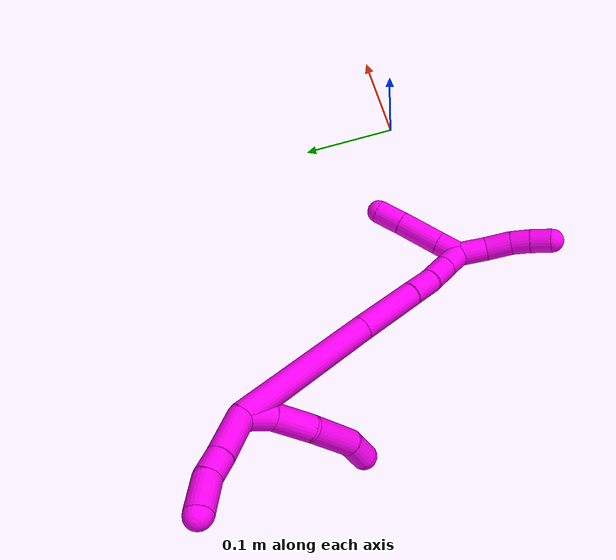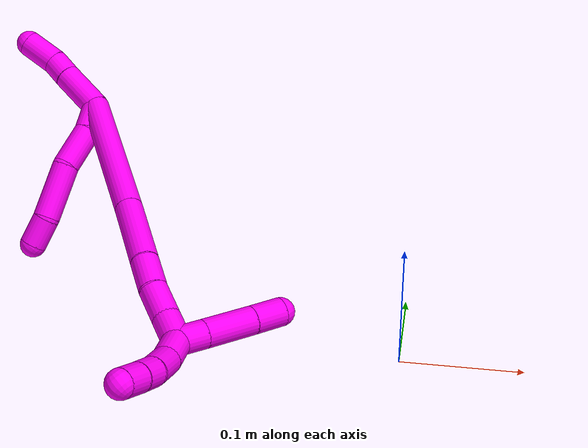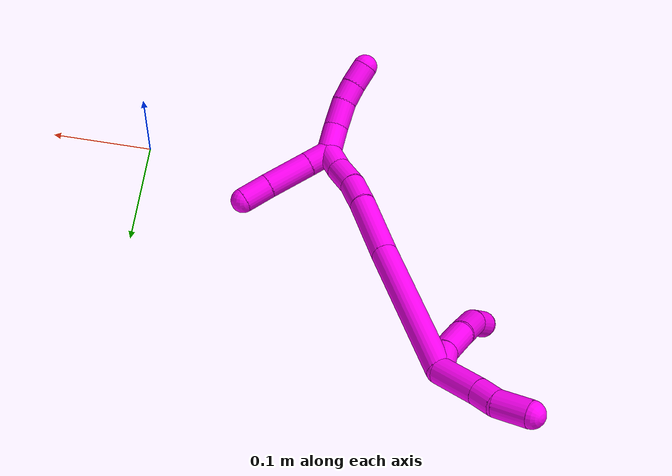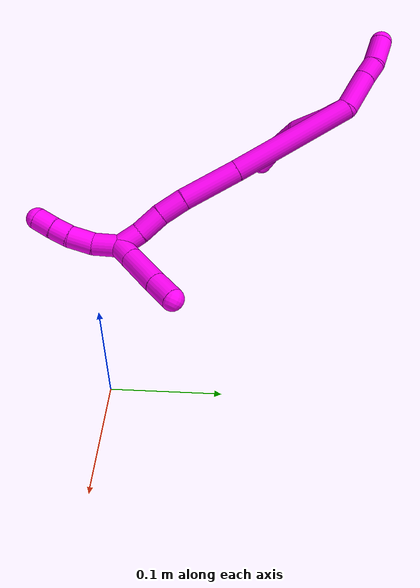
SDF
<sdf version="1.7">
 <world name="default">
  <model name="10">
   <static>0</static>
   <link name="10">
    <collision name="collision-cylinder-e_1_2_8">
     <pose>-0.00698 -0.009637 -0.008651 2.30238 -0.494334 -1.02952</pose>
     <geometry><cylinder><radius>0.0125</radius><length>0.029423</length></cylinder></geometry>
     <surface>
      <friction><ode><mu>1.16</mu><mu2>1.16</mu2><slip1>0</slip1><slip2>0</slip2></ode></friction>
      <contact><ode><kp>1e+06</kp><kd>1</kd><max_vel>0</max_vel><min_depth>0.001</min_depth></ode></contact>
     </surface>
    </collision>
    <visual name="visual-cylinder-e_1_2_8">
     <pose>-0.00698 -0.009637 -0.008651 2.30238 -0.494334 -1.02952</pose>
     <geometry><cylinder><radius>0.0125</radius><length>0.029423</length></cylinder></geometry>
     <material><ambient>1 0 0.964706 1</ambient></material>
    </visual>
    <collision name="collision-cylinder-e_2_8_9">
     <pose>-0.02703 -0.032416 -0.024986 2.09978 -0.709431 -1.14645</pose>
     <geometry><cylinder><radius>0.0125</radius><length>0.04013</length></cylinder></geometry>
     <surface>
      <friction><ode><mu>1.16</mu><mu2>1.16</mu2><slip1>0</slip1><slip2>0</slip2></ode></friction>
      <contact><ode><kp>1e+06</kp><kd>1</kd><max_vel>0</max_vel><min_depth>0.001</min_depth></ode></contact>
     </surface>
    </collision>
    <visual name="visual-cylinder-e_2_8_9">
     <pose>-0.02703 -0.032416 -0.024986 2.09978 -0.709431 -1.14645</pose>
     <geometry><cylinder><radius>0.0125</radius><length>0.04013</length></cylinder></geometry>
     <material><ambient>1 0 0.964706 1</ambient></material>
    </visual>
    <collision name="collision-cylinder-e_3_9_10">
     <pose>-0.059503 -0.056997 -0.046289 2.44309 -0.828834 -1.75856</pose>
     <geometry><cylinder><radius>0.0125</radius><length>0.052642</length></cylinder></geometry>
     <surface>
      <friction><ode><mu>1.16</mu><mu2>1.16</mu2><slip1>0</slip1><slip2>0</slip2></ode></friction>
      <contact><ode><kp>1e+06</kp><kd>1</kd><max_vel>0</max_vel><min_depth>0.001</min_depth></ode></contact>
     </surface>
    </collision>
    <visual name="visual-cylinder-e_3_9_10">
     <pose>-0.059503 -0.056997 -0.046289 2.44309 -0.828834 -1.75856</pose>
     <geometry><cylinder><radius>0.0125</radius><length>0.052642</length></cylinder></geometry>
     <material><ambient>1 0 0.964706 1</ambient></material>
    </visual>
    <collision name="collision-cylinder-e_4_10_6">
     <pose>-0.09135 -0.072298 -0.064756 2.46859 -1.10881 -2.1131</pose>
     <geometry><cylinder><radius>0.0125</radius><length>0.027805</length></cylinder></geometry>
     <surface>
      <friction><ode><mu>1.16</mu><mu2>1.16</mu2><slip1>0</slip1><slip2>0</slip2></ode></friction>
      <contact><ode><kp>1e+06</kp><kd>1</kd><max_vel>0</max_vel><min_depth>0.001</min_depth></ode></contact>
     </surface>
    </collision>
    <visual name="visual-cylinder-e_4_10_6">
     <pose>-0.09135 -0.072298 -0.064756 2.46859 -1.10881 -2.1131</pose>
     <geometry><cylinder><radius>0.0125</radius><length>0.027805</length></cylinder></geometry>
     <material><ambient>1 0 0.964706 1</ambient></material>
    </visual>
    <collision name="collision-cylinder-e_1_2_11">
     <pose>-0.002723 0.002247 0.022334 -0.100259 -0.12074 0.006065</pose>
     <geometry><cylinder><radius>0.0125</radius><length>0.045222</length></cylinder></geometry>
     <surface>
      <friction><ode><mu>1.16</mu><mu2>1.16</mu2><slip1>0</slip1><slip2>0</slip2></ode></friction>
      <contact><ode><kp>1e+06</kp><kd>1</kd><max_vel>0</max_vel><min_depth>0.001</min_depth></ode></contact>
     </surface>
    </collision>
    <visual name="visual-cylinder-e_1_2_11">
     <pose>-0.002723 0.002247 0.022334 -0.100259 -0.12074 0.006065</pose>
     <geometry><cylinder><radius>0.0125</radius><length>0.045222</length></cylinder></geometry>
     <material><ambient>1 0 0.964706 1</ambient></material>
    </visual>
    <collision name="collision-cylinder-e_2_11_12">
     <pose>-0.006636 0.006215 0.055186 -0.162242 -0.111093 0.009041</pose>
     <geometry><cylinder><radius>0.0125</radius><length>0.02145</length></cylinder></geometry>
     <surface>
      <friction><ode><mu>1.16</mu><mu2>1.16</mu2><slip1>0</slip1><slip2>0</slip2></ode></friction>
      <contact><ode><kp>1e+06</kp><kd>1</kd><max_vel>0</max_vel><min_depth>0.001</min_depth></ode></contact>
     </surface>
    </collision>
    <visual name="visual-cylinder-e_2_11_12">
     <pose>-0.006636 0.006215 0.055186 -0.162242 -0.111093 0.009041</pose>
     <geometry><cylinder><radius>0.0125</radius><length>0.02145</length></cylinder></geometry>
     <material><ambient>1 0 0.964706 1</ambient></material>
    </visual>
    <collision name="collision-cylinder-e_3_12_5">
     <pose>-0.011314 0.006391 0.081926 0.094994 -0.210938 -0.010064</pose>
     <geometry><cylinder><radius>0.0125</radius><length>0.033328</length></cylinder></geometry>
     <surface>
      <friction><ode><mu>1.16</mu><mu2>1.16</mu2><slip1>0</slip1><slip2>0</slip2></ode></friction>
      <contact><ode><kp>1e+06</kp><kd>1</kd><max_vel>0</max_vel><min_depth>0.001</min_depth></ode></contact>
     </surface>
    </collision>
    <visual name="visual-cylinder-e_3_12_5">
     <pose>-0.011314 0.006391 0.081926 0.094994 -0.210938 -0.010064</pose>
     <geometry><cylinder><radius>0.0125</radius><length>0.033328</length></cylinder></geometry>
     <material><ambient>1 0 0.964706 1</ambient></material>
    </visual>
    <collision name="collision-cylinder-e_1_2_13">
     <pose>0.003956 -0.041686 -0.059333 2.52914 0.054504 0.172004</pose>
     <geometry><cylinder><radius>0.0125</radius><length>0.145241</length></cylinder></geometry>
     <surface>
      <friction><ode><mu>1.16</mu><mu2>1.16</mu2><slip1>0</slip1><slip2>0</slip2></ode></friction>
      <contact><ode><kp>1e+06</kp><kd>1</kd><max_vel>0</max_vel><min_depth>0.001</min_depth></ode></contact>
     </surface>
    </collision>
    <visual name="visual-cylinder-e_1_2_13">
     <pose>0.003956 -0.041686 -0.059333 2.52914 0.054504 0.172004</pose>
     <geometry><cylinder><radius>0.0125</radius><length>0.145241</length></cylinder></geometry>
     <material><ambient>1 0 0.964706 1</ambient></material>
    </visual>
    <collision name="collision-cylinder-e_2_13_14">
     <pose>0.009731 -0.103391 -0.145839 2.50664 0.053838 0.163521</pose>
     <geometry><cylinder><radius>0.0125</radius><length>0.067603</length></cylinder></geometry>
     <surface>
      <friction><ode><mu>1.16</mu><mu2>1.16</mu2><slip1>0</slip1><slip2>0</slip2></ode></friction>
      <contact><ode><kp>1e+06</kp><kd>1</kd><max_vel>0</max_vel><min_depth>0.001</min_depth></ode></contact>
     </surface>
    </collision>
    <visual name="visual-cylinder-e_2_13_14">
     <pose>0.009731 -0.103391 -0.145839 2.50664 0.053838 0.163521</pose>
     <geometry><cylinder><radius>0.0125</radius><length>0.067603</length></cylinder></geometry>
     <material><ambient>1 0 0.964706 1</ambient></material>
    </visual>
    <collision name="collision-cylinder-e_3_14_15">
     <pose>0.011451 -0.131622 -0.185966 2.5766 -0.006472 -0.022296</pose>
     <geometry><cylinder><radius>0.0125</radius><length>0.030672</length></cylinder></geometry>
     <surface>
      <friction><ode><mu>1.16</mu><mu2>1.16</mu2><slip1>0</slip1><slip2>0</slip2></ode></friction>
      <contact><ode><kp>1e+06</kp><kd>1</kd><max_vel>0</max_vel><min_depth>0.001</min_depth></ode></contact>
     </surface>
    </collision>
    <visual name="visual-cylinder-e_3_14_15">
     <pose>0.011451 -0.131622 -0.185966 2.5766 -0.006472 -0.022296</pose>
     <geometry><cylinder><radius>0.0125</radius><length>0.030672</length></cylinder></geometry>
     <material><ambient>1 0 0.964706 1</ambient></material>
    </visual>
    <collision name="collision-cylinder-e_4_15_16">
     <pose>0.01136 -0.145814 -0.212848 2.73602 0.00058 0.002821</pose>
     <geometry><cylinder><radius>0.0125</radius><length>0.030319</length></cylinder></geometry>
     <surface>
      <friction><ode><mu>1.16</mu><mu2>1.16</mu2><slip1>0</slip1><slip2>0</slip2></ode></friction>
      <contact><ode><kp>1e+06</kp><kd>1</kd><max_vel>0</max_vel><min_depth>0.001</min_depth></ode></contact>
     </surface>
    </collision>
    <visual name="visual-cylinder-e_4_15_16">
     <pose>0.01136 -0.145814 -0.212848 2.73602 0.00058 0.002821</pose>
     <geometry><cylinder><radius>0.0125</radius><length>0.030319</length></cylinder></geometry>
     <material><ambient>1 0 0.964706 1</ambient></material>
    </visual>
    <collision name="collision-cylinder-e_5_16_1">
     <pose>0.01273 -0.158445 -0.237962 2.60517 0.10417 0.374919</pose>
     <geometry><cylinder><radius>0.0125</radius><length>0.026166</length></cylinder></geometry>
     <surface>
      <friction><ode><mu>1.16</mu><mu2>1.16</mu2><slip1>0</slip1><slip2>0</slip2></ode></friction>
      <contact><ode><kp>1e+06</kp><kd>1</kd><max_vel>0</max_vel><min_depth>0.001</min_depth></ode></contact>
     </surface>
    </collision>
    <visual name="visual-cylinder-e_5_16_1">
     <pose>0.01273 -0.158445 -0.237962 2.60517 0.10417 0.374919</pose>
     <geometry><cylinder><radius>0.0125</radius><length>0.026166</length></cylinder></geometry>
     <material><ambient>1 0 0.964706 1</ambient></material>
    </visual>
    <collision name="collision-cylinder-e_1_1_17">
     <pose>0.019339 -0.154562 -0.252953 -1.91757 0.438268 -0.614485</pose>
     <geometry><cylinder><radius>0.0125</radius><length>0.024738</length></cylinder></geometry>
     <surface>
      <friction><ode><mu>1.16</mu><mu2>1.16</mu2><slip1>0</slip1><slip2>0</slip2></ode></friction>
      <contact><ode><kp>1e+06</kp><kd>1</kd><max_vel>0</max_vel><min_depth>0.001</min_depth></ode></contact>
     </surface>
    </collision>
    <visual name="visual-cylinder-e_1_1_17">
     <pose>0.019339 -0.154562 -0.252953 -1.91757 0.438268 -0.614485</pose>
     <geometry><cylinder><radius>0.0125</radius><length>0.024738</length></cylinder></geometry>
     <material><ambient>1 0 0.964706 1</ambient></material>
    </visual>
    <collision name="collision-cylinder-e_2_17_18">
     <pose>0.034659 -0.124322 -0.263792 -1.91357 0.448608 -0.626021</pose>
     <geometry><cylinder><radius>0.0125</radius><length>0.046443</length></cylinder></geometry>
     <surface>
      <friction><ode><mu>1.16</mu><mu2>1.16</mu2><slip1>0</slip1><slip2>0</slip2></ode></friction>
      <contact><ode><kp>1e+06</kp><kd>1</kd><max_vel>0</max_vel><min_depth>0.001</min_depth></ode></contact>
     </surface>
    </collision>
    <visual name="visual-cylinder-e_2_17_18">
     <pose>0.034659 -0.124322 -0.263792 -1.91357 0.448608 -0.626021</pose>
     <geometry><cylinder><radius>0.0125</radius><length>0.046443</length></cylinder></geometry>
     <material><ambient>1 0 0.964706 1</ambient></material>
    </visual>
    <collision name="collision-cylinder-e_3_18_4">
     <pose>0.050753 -0.092185 -0.274931 -1.8899 0.431135 -0.588337</pose>
     <geometry><cylinder><radius>0.0125</radius><length>0.028819</length></cylinder></geometry>
     <surface>
      <friction><ode><mu>1.16</mu><mu2>1.16</mu2><slip1>0</slip1><slip2>0</slip2></ode></friction>
      <contact><ode><kp>1e+06</kp><kd>1</kd><max_vel>0</max_vel><min_depth>0.001</min_depth></ode></contact>
     </surface>
    </collision>
    <visual name="visual-cylinder-e_3_18_4">
     <pose>0.050753 -0.092185 -0.274931 -1.8899 0.431135 -0.588337</pose>
     <geometry><cylinder><radius>0.0125</radius><length>0.028819</length></cylinder></geometry>
     <material><ambient>1 0 0.964706 1</ambient></material>
    </visual>
    <collision name="collision-cylinder-e_1_1_19">
     <pose>0.013788 -0.178962 -0.253969 1.90551 -0.020561 -0.028919</pose>
     <geometry><cylinder><radius>0.0125</radius><length>0.029369</length></cylinder></geometry>
     <surface>
      <friction><ode><mu>1.16</mu><mu2>1.16</mu2><slip1>0</slip1><slip2>0</slip2></ode></friction>
      <contact><ode><kp>1e+06</kp><kd>1</kd><max_vel>0</max_vel><min_depth>0.001</min_depth></ode></contact>
     </surface>
    </collision>
    <visual name="visual-cylinder-e_1_1_19">
     <pose>0.013788 -0.178962 -0.253969 1.90551 -0.020561 -0.028919</pose>
     <geometry><cylinder><radius>0.0125</radius><length>0.029369</length></cylinder></geometry>
     <material><ambient>1 0 0.964706 1</ambient></material>
    </visual>
    <collision name="collision-cylinder-e_2_19_20">
     <pose>0.015189 -0.20661 -0.260608 1.70181 0.121918 0.138984</pose>
     <geometry><cylinder><radius>0.0125</radius><length>0.028009</length></cylinder></geometry>
     <surface>
      <friction><ode><mu>1.16</mu><mu2>1.16</mu2><slip1>0</slip1><slip2>0</slip2></ode></friction>
      <contact><ode><kp>1e+06</kp><kd>1</kd><max_vel>0</max_vel><min_depth>0.001</min_depth></ode></contact>
     </surface>
    </collision>
    <visual name="visual-cylinder-e_2_19_20">
     <pose>0.015189 -0.20661 -0.260608 1.70181 0.121918 0.138984</pose>
     <geometry><cylinder><radius>0.0125</radius><length>0.028009</length></cylinder></geometry>
     <material><ambient>1 0 0.964706 1</ambient></material>
    </visual>
    <collision name="collision-cylinder-e_3_20_21">
     <pose>0.017463 -0.230591 -0.261966 1.52601 0.055774 0.053332</pose>
     <geometry><cylinder><radius>0.0125</radius><length>0.020451</length></cylinder></geometry>
     <surface>
      <friction><ode><mu>1.16</mu><mu2>1.16</mu2><slip1>0</slip1><slip2>0</slip2></ode></friction>
      <contact><ode><kp>1e+06</kp><kd>1</kd><max_vel>0</max_vel><min_depth>0.001</min_depth></ode></contact>
     </surface>
    </collision>
    <visual name="visual-cylinder-e_3_20_21">
     <pose>0.017463 -0.230591 -0.261966 1.52601 0.055774 0.053332</pose>
     <geometry><cylinder><radius>0.0125</radius><length>0.020451</length></cylinder></geometry>
     <material><ambient>1 0 0.964706 1</ambient></material>
    </visual>
    <collision name="collision-cylinder-e_4_21_3">
     <pose>0.018029 -0.251816 -0.260367 1.46759 -0.000293 -0.000264</pose>
     <geometry><cylinder><radius>0.0125</radius><length>0.022171</length></cylinder></geometry>
     <surface>
      <friction><ode><mu>1.16</mu><mu2>1.16</mu2><slip1>0</slip1><slip2>0</slip2></ode></friction>
      <contact><ode><kp>1e+06</kp><kd>1</kd><max_vel>0</max_vel><min_depth>0.001</min_depth></ode></contact>
     </surface>
    </collision>
    <visual name="visual-cylinder-e_4_21_3">
     <pose>0.018029 -0.251816 -0.260367 1.46759 -0.000293 -0.000264</pose>
     <geometry><cylinder><radius>0.0125</radius><length>0.022171</length></cylinder></geometry>
     <material><ambient>1 0 0.964706 1</ambient></material>
    </visual>
    <collision name="collision-sphere-3">
     <pose>0.018026 -0.262843 -0.259225 0 -0 0</pose>
     <geometry><sphere><radius>0.0125</radius></sphere></geometry>
     <surface>
      <friction><ode><mu>1.16</mu><mu2>1.16</mu2><slip1>0</slip1><slip2>0</slip2></ode></friction>
      <contact><ode><kp>1e+06</kp><kd>1</kd><max_vel>0</max_vel><min_depth>0.001</min_depth></ode></contact>
     </surface>
    </collision>
    <visual name="visual-sphere-3">
     <pose>0.018026 -0.262843 -0.259225 0 -0 0</pose>
     <geometry><sphere><radius>0.0125</radius></sphere></geometry>
     <material><ambient>1 0 0.964706 1</ambient></material>
    </visual>
    <collision name="collision-sphere-21">
     <pose>0.018033 -0.24079 -0.261509 0 -0 0</pose>
     <geometry><sphere><radius>0.0125</radius></sphere></geometry>
     <surface>
      <friction><ode><mu>1.16</mu><mu2>1.16</mu2><slip1>0</slip1><slip2>0</slip2></ode></friction>
      <contact><ode><kp>1e+06</kp><kd>1</kd><max_vel>0</max_vel><min_depth>0.001</min_depth></ode></contact>
     </surface>
    </collision>
    <visual name="visual-sphere-21">
     <pose>0.018033 -0.24079 -0.261509 0 -0 0</pose>
     <geometry><sphere><radius>0.0125</radius></sphere></geometry>
     <material><ambient>1 0 0.964706 1</ambient></material>
    </visual>
    <collision name="collision-sphere-20">
     <pose>0.016893 -0.220392 -0.262424 0 -0 0</pose>
     <geometry><sphere><radius>0.0125</radius></sphere></geometry>
     <surface>
      <friction><ode><mu>1.16</mu><mu2>1.16</mu2><slip1>0</slip1><slip2>0</slip2></ode></friction>
      <contact><ode><kp>1e+06</kp><kd>1</kd><max_vel>0</max_vel><min_depth>0.001</min_depth></ode></contact>
     </surface>
    </collision>
    <visual name="visual-sphere-20">
     <pose>0.016893 -0.220392 -0.262424 0 -0 0</pose>
     <geometry><sphere><radius>0.0125</radius></sphere></geometry>
     <material><ambient>1 0 0.964706 1</ambient></material>
    </visual>
    <collision name="collision-sphere-19">
     <pose>0.013486 -0.192828 -0.258792 0 -0 0</pose>
     <geometry><sphere><radius>0.0125</radius></sphere></geometry>
     <surface>
      <friction><ode><mu>1.16</mu><mu2>1.16</mu2><slip1>0</slip1><slip2>0</slip2></ode></friction>
      <contact><ode><kp>1e+06</kp><kd>1</kd><max_vel>0</max_vel><min_depth>0.001</min_depth></ode></contact>
     </surface>
    </collision>
    <visual name="visual-sphere-19">
     <pose>0.013486 -0.192828 -0.258792 0 -0 0</pose>
     <geometry><sphere><radius>0.0125</radius></sphere></geometry>
     <material><ambient>1 0 0.964706 1</ambient></material>
    </visual>
    <collision name="collision-sphere-11">
     <pose>-0.005447 0.004493 0.044667 0 -0 0</pose>
     <geometry><sphere><radius>0.0125</radius></sphere></geometry>
     <surface>
      <friction><ode><mu>1.16</mu><mu2>1.16</mu2><slip1>0</slip1><slip2>0</slip2></ode></friction>
      <contact><ode><kp>1e+06</kp><kd>1</kd><max_vel>0</max_vel><min_depth>0.001</min_depth></ode></contact>
     </surface>
    </collision>
    <visual name="visual-sphere-11">
     <pose>-0.005447 0.004493 0.044667 0 -0 0</pose>
     <geometry><sphere><radius>0.0125</radius></sphere></geometry>
     <material><ambient>1 0 0.964706 1</ambient></material>
    </visual>
    <collision name="collision-sphere-6">
     <pose>-0.103795 -0.07616 -0.069601 0 -0 0</pose>
     <geometry><sphere><radius>0.0125</radius></sphere></geometry>
     <surface>
      <friction><ode><mu>1.16</mu><mu2>1.16</mu2><slip1>0</slip1><slip2>0</slip2></ode></friction>
      <contact><ode><kp>1e+06</kp><kd>1</kd><max_vel>0</max_vel><min_depth>0.001</min_depth></ode></contact>
     </surface>
    </collision>
    <visual name="visual-sphere-6">
     <pose>-0.103795 -0.07616 -0.069601 0 -0 0</pose>
     <geometry><sphere><radius>0.0125</radius></sphere></geometry>
     <material><ambient>1 0 0.964706 1</ambient></material>
    </visual>
    <collision name="collision-sphere-10">
     <pose>-0.078905 -0.068435 -0.05991 0 -0 0</pose>
     <geometry><sphere><radius>0.0125</radius></sphere></geometry>
     <surface>
      <friction><ode><mu>1.16</mu><mu2>1.16</mu2><slip1>0</slip1><slip2>0</slip2></ode></friction>
      <contact><ode><kp>1e+06</kp><kd>1</kd><max_vel>0</max_vel><min_depth>0.001</min_depth></ode></contact>
     </surface>
    </collision>
    <visual name="visual-sphere-10">
     <pose>-0.078905 -0.068435 -0.05991 0 -0 0</pose>
     <geometry><sphere><radius>0.0125</radius></sphere></geometry>
     <material><ambient>1 0 0.964706 1</ambient></material>
    </visual>
    <collision name="collision-sphere-9">
     <pose>-0.0401 -0.045559 -0.032669 0 -0 0</pose>
     <geometry><sphere><radius>0.0125</radius></sphere></geometry>
     <surface>
      <friction><ode><mu>1.16</mu><mu2>1.16</mu2><slip1>0</slip1><slip2>0</slip2></ode></friction>
      <contact><ode><kp>1e+06</kp><kd>1</kd><max_vel>0</max_vel><min_depth>0.001</min_depth></ode></contact>
     </surface>
    </collision>
    <visual name="visual-sphere-9">
     <pose>-0.0401 -0.045559 -0.032669 0 -0 0</pose>
     <geometry><sphere><radius>0.0125</radius></sphere></geometry>
     <material><ambient>1 0 0.964706 1</ambient></material>
    </visual>
    <collision name="collision-sphere-2">
     <geometry><sphere><radius>0.0125</radius></sphere></geometry>
     <surface>
      <friction><ode><mu>1.16</mu><mu2>1.16</mu2><slip1>0</slip1><slip2>0</slip2></ode></friction>
      <contact><ode><kp>1e+06</kp><kd>1</kd><max_vel>0</max_vel><min_depth>0.001</min_depth></ode></contact>
     </surface>
    </collision>
    <visual name="visual-sphere-2">
     <geometry><sphere><radius>0.0125</radius></sphere></geometry>
     <material><ambient>1 0 0.964706 1</ambient></material>
    </visual>
    <collision name="collision-sphere-8">
     <pose>-0.01396 -0.019273 -0.017303 0 -0 0</pose>
     <geometry><sphere><radius>0.0125</radius></sphere></geometry>
     <surface>
      <friction><ode><mu>1.16</mu><mu2>1.16</mu2><slip1>0</slip1><slip2>0</slip2></ode></friction>
      <contact><ode><kp>1e+06</kp><kd>1</kd><max_vel>0</max_vel><min_depth>0.001</min_depth></ode></contact>
     </surface>
    </collision>
    <visual name="visual-sphere-8">
     <pose>-0.01396 -0.019273 -0.017303 0 -0 0</pose>
     <geometry><sphere><radius>0.0125</radius></sphere></geometry>
     <material><ambient>1 0 0.964706 1</ambient></material>
    </visual>
    <collision name="collision-sphere-12">
     <pose>-0.007825 0.007937 0.065705 0 -0 0</pose>
     <geometry><sphere><radius>0.0125</radius></sphere></geometry>
     <surface>
      <friction><ode><mu>1.16</mu><mu2>1.16</mu2><slip1>0</slip1><slip2>0</slip2></ode></friction>
      <contact><ode><kp>1e+06</kp><kd>1</kd><max_vel>0</max_vel><min_depth>0.001</min_depth></ode></contact>
     </surface>
    </collision>
    <visual name="visual-sphere-12">
     <pose>-0.007825 0.007937 0.065705 0 -0 0</pose>
     <geometry><sphere><radius>0.0125</radius></sphere></geometry>
     <material><ambient>1 0 0.964706 1</ambient></material>
    </visual>
    <collision name="collision-sphere-5">
     <pose>-0.014803 0.004846 0.098148 0 -0 0</pose>
     <geometry><sphere><radius>0.0125</radius></sphere></geometry>
     <surface>
      <friction><ode><mu>1.16</mu><mu2>1.16</mu2><slip1>0</slip1><slip2>0</slip2></ode></friction>
      <contact><ode><kp>1e+06</kp><kd>1</kd><max_vel>0</max_vel><min_depth>0.001</min_depth></ode></contact>
     </surface>
    </collision>
    <visual name="visual-sphere-5">
     <pose>-0.014803 0.004846 0.098148 0 -0 0</pose>
     <geometry><sphere><radius>0.0125</radius></sphere></geometry>
     <material><ambient>1 0 0.964706 1</ambient></material>
    </visual>
    <collision name="collision-sphere-13">
     <pose>0.007912 -0.083371 -0.118665 0 -0 0</pose>
     <geometry><sphere><radius>0.0125</radius></sphere></geometry>
     <surface>
      <friction><ode><mu>1.16</mu><mu2>1.16</mu2><slip1>0</slip1><slip2>0</slip2></ode></friction>
      <contact><ode><kp>1e+06</kp><kd>1</kd><max_vel>0</max_vel><min_depth>0.001</min_depth></ode></contact>
     </surface>
    </collision>
    <visual name="visual-sphere-13">
     <pose>0.007912 -0.083371 -0.118665 0 -0 0</pose>
     <geometry><sphere><radius>0.0125</radius></sphere></geometry>
     <material><ambient>1 0 0.964706 1</ambient></material>
    </visual>
    <collision name="collision-sphere-14">
     <pose>0.01155 -0.123411 -0.173013 0 -0 0</pose>
     <geometry><sphere><radius>0.0125</radius></sphere></geometry>
     <surface>
      <friction><ode><mu>1.16</mu><mu2>1.16</mu2><slip1>0</slip1><slip2>0</slip2></ode></friction>
      <contact><ode><kp>1e+06</kp><kd>1</kd><max_vel>0</max_vel><min_depth>0.001</min_depth></ode></contact>
     </surface>
    </collision>
    <visual name="visual-sphere-14">
     <pose>0.01155 -0.123411 -0.173013 0 -0 0</pose>
     <geometry><sphere><radius>0.0125</radius></sphere></geometry>
     <material><ambient>1 0 0.964706 1</ambient></material>
    </visual>
    <collision name="collision-sphere-15">
     <pose>0.011352 -0.139833 -0.198918 0 -0 0</pose>
     <geometry><sphere><radius>0.0125</radius></sphere></geometry>
     <surface>
      <friction><ode><mu>1.16</mu><mu2>1.16</mu2><slip1>0</slip1><slip2>0</slip2></ode></friction>
      <contact><ode><kp>1e+06</kp><kd>1</kd><max_vel>0</max_vel><min_depth>0.001</min_depth></ode></contact>
     </surface>
    </collision>
    <visual name="visual-sphere-15">
     <pose>0.011352 -0.139833 -0.198918 0 -0 0</pose>
     <geometry><sphere><radius>0.0125</radius></sphere></geometry>
     <material><ambient>1 0 0.964706 1</ambient></material>
    </visual>
    <collision name="collision-sphere-16">
     <pose>0.011369 -0.151795 -0.226777 0 -0 0</pose>
     <geometry><sphere><radius>0.0125</radius></sphere></geometry>
     <surface>
      <friction><ode><mu>1.16</mu><mu2>1.16</mu2><slip1>0</slip1><slip2>0</slip2></ode></friction>
      <contact><ode><kp>1e+06</kp><kd>1</kd><max_vel>0</max_vel><min_depth>0.001</min_depth></ode></contact>
     </surface>
    </collision>
    <visual name="visual-sphere-16">
     <pose>0.011369 -0.151795 -0.226777 0 -0 0</pose>
     <geometry><sphere><radius>0.0125</radius></sphere></geometry>
     <material><ambient>1 0 0.964706 1</ambient></material>
    </visual>
    <collision name="collision-sphere-1">
     <pose>0.01409 -0.165095 -0.249146 0 -0 0</pose>
     <geometry><sphere><radius>0.0125</radius></sphere></geometry>
     <surface>
      <friction><ode><mu>1.16</mu><mu2>1.16</mu2><slip1>0</slip1><slip2>0</slip2></ode></friction>
      <contact><ode><kp>1e+06</kp><kd>1</kd><max_vel>0</max_vel><min_depth>0.001</min_depth></ode></contact>
     </surface>
    </collision>
    <visual name="visual-sphere-1">
     <pose>0.01409 -0.165095 -0.249146 0 -0 0</pose>
     <geometry><sphere><radius>0.0125</radius></sphere></geometry>
     <material><ambient>1 0 0.964706 1</ambient></material>
    </visual>
    <collision name="collision-sphere-18">
     <pose>0.044731 -0.104616 -0.270824 0 -0 0</pose>
     <geometry><sphere><radius>0.0125</radius></sphere></geometry>
     <surface>
      <friction><ode><mu>1.16</mu><mu2>1.16</mu2><slip1>0</slip1><slip2>0</slip2></ode></friction>
      <contact><ode><kp>1e+06</kp><kd>1</kd><max_vel>0</max_vel><min_depth>0.001</min_depth></ode></contact>
     </surface>
    </collision>
    <visual name="visual-sphere-18">
     <pose>0.044731 -0.104616 -0.270824 0 -0 0</pose>
     <geometry><sphere><radius>0.0125</radius></sphere></geometry>
     <material><ambient>1 0 0.964706 1</ambient></material>
    </visual>
    <collision name="collision-sphere-17">
     <pose>0.024588 -0.144029 -0.256759 0 -0 0</pose>
     <geometry><sphere><radius>0.0125</radius></sphere></geometry>
     <surface>
      <friction><ode><mu>1.16</mu><mu2>1.16</mu2><slip1>0</slip1><slip2>0</slip2></ode></friction>
      <contact><ode><kp>1e+06</kp><kd>1</kd><max_vel>0</max_vel><min_depth>0.001</min_depth></ode></contact>
     </surface>
    </collision>
    <visual name="visual-sphere-17">
     <pose>0.024588 -0.144029 -0.256759 0 -0 0</pose>
     <geometry><sphere><radius>0.0125</radius></sphere></geometry>
     <material><ambient>1 0 0.964706 1</ambient></material>
    </visual>
    <collision name="collision-sphere-4">
     <pose>0.056774 -0.079755 -0.279038 0 -0 0</pose>
     <geometry><sphere><radius>0.0125</radius></sphere></geometry>
     <surface>
      <friction><ode><mu>1.16</mu><mu2>1.16</mu2><slip1>0</slip1><slip2>0</slip2></ode></friction>
      <contact><ode><kp>1e+06</kp><kd>1</kd><max_vel>0</max_vel><min_depth>0.001</min_depth></ode></contact>
     </surface>
    </collision>
    <visual name="visual-sphere-4">
     <pose>0.056774 -0.079755 -0.279038 0 -0 0</pose>
     <geometry><sphere><radius>0.0125</radius></sphere></geometry>
     <material><ambient>1 0 0.964706 1</ambient></material>
    </visual>
    <inertial>
     <pose>-0.000274 -0.087188 -0.119668 0 -0 0</pose>
     <mass>0.75</mass>
     <inertia>
      <ixx>0.000352</ixx>
      <ixy>0</ixy>
      <ixz>0</ixz>
      <iyy>-0.000208</iyy>
      <iyz>0</iyz>
      <izz>0.000158</izz>
     </inertia>
    </inertial>
   </link>
   <pose>-0.311311 0.227586 0.11809 -0.328135 -0.887542 -0.076811</pose>
  </model>
 </world>
</sdf>
